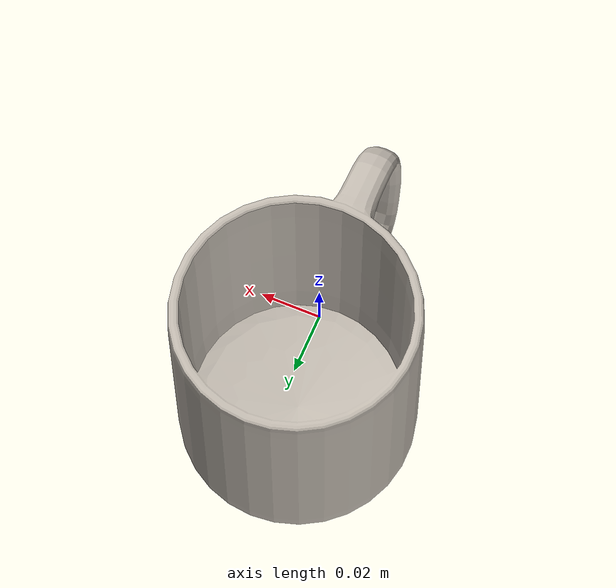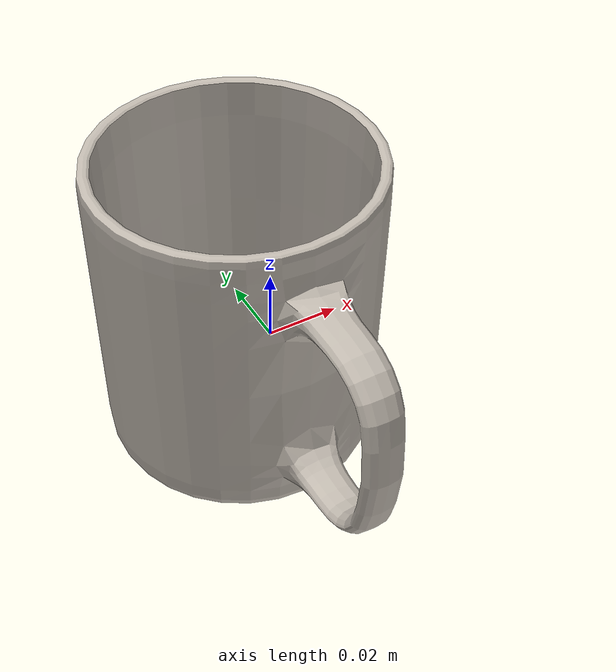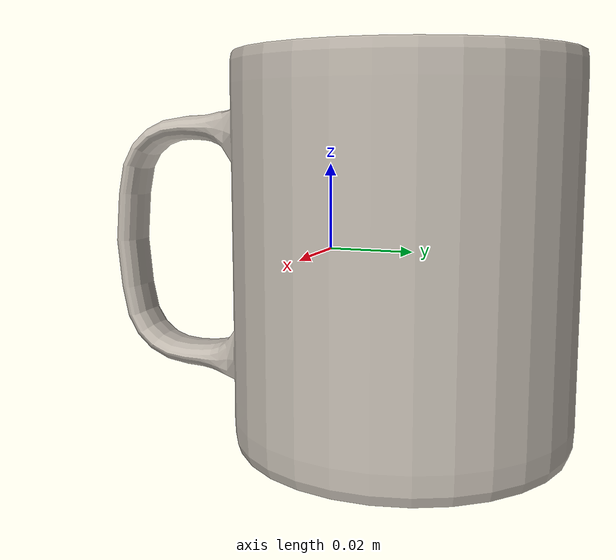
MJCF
<mujoco model="mug_14">
  <asset>
    <mesh file="visual/model_normalized_0.obj" name="model_normalized_0_vis" scale="0.115 0.115 0.115" refquat="-0.7071067811865477 0.0 0.0 0.7071067811865474"/>
    <mesh file="collision/model_normalized_collision_22.obj" name="model_normalized_collision_22._coll" scale="0.115 0.115 0.115" refquat="-0.7071067811865477 0.0 0.0 0.7071067811865474"/>
    <mesh file="collision/model_normalized_collision_23.obj" name="model_normalized_collision_23._coll" scale="0.115 0.115 0.115" refquat="-0.7071067811865477 0.0 0.0 0.7071067811865474"/>
    <mesh file="collision/model_normalized_collision_21.obj" name="model_normalized_collision_21._coll" scale="0.115 0.115 0.115" refquat="-0.7071067811865477 0.0 0.0 0.7071067811865474"/>
    <mesh file="collision/model_normalized_collision_20.obj" name="model_normalized_collision_20._coll" scale="0.115 0.115 0.115" refquat="-0.7071067811865477 0.0 0.0 0.7071067811865474"/>
    <mesh file="collision/model_normalized_collision_24.obj" name="model_normalized_collision_24._coll" scale="0.115 0.115 0.115" refquat="-0.7071067811865477 0.0 0.0 0.7071067811865474"/>
    <mesh file="collision/model_normalized_collision_30.obj" name="model_normalized_collision_30._coll" scale="0.115 0.115 0.115" refquat="-0.7071067811865477 0.0 0.0 0.7071067811865474"/>
    <mesh file="collision/model_normalized_collision_18.obj" name="model_normalized_collision_18._coll" scale="0.115 0.115 0.115" refquat="-0.7071067811865477 0.0 0.0 0.7071067811865474"/>
    <mesh file="collision/model_normalized_collision_19.obj" name="model_normalized_collision_19._coll" scale="0.115 0.115 0.115" refquat="-0.7071067811865477 0.0 0.0 0.7071067811865474"/>
    <mesh file="collision/model_normalized_collision_31.obj" name="model_normalized_collision_31._coll" scale="0.115 0.115 0.115" refquat="-0.7071067811865477 0.0 0.0 0.7071067811865474"/>
    <mesh file="collision/model_normalized_collision_25.obj" name="model_normalized_collision_25._coll" scale="0.115 0.115 0.115" refquat="-0.7071067811865477 0.0 0.0 0.7071067811865474"/>
    <mesh file="collision/model_normalized_collision_27.obj" name="model_normalized_collision_27._coll" scale="0.115 0.115 0.115" refquat="-0.7071067811865477 0.0 0.0 0.7071067811865474"/>
    <mesh file="collision/model_normalized_collision_26.obj" name="model_normalized_collision_26._coll" scale="0.115 0.115 0.115" refquat="-0.7071067811865477 0.0 0.0 0.7071067811865474"/>
    <mesh file="collision/model_normalized_collision_9.obj" name="model_normalized_collision_9._coll" scale="0.115 0.115 0.115" refquat="-0.7071067811865477 0.0 0.0 0.7071067811865474"/>
    <mesh file="collision/model_normalized_collision_8.obj" name="model_normalized_collision_8._coll" scale="0.115 0.115 0.115" refquat="-0.7071067811865477 0.0 0.0 0.7071067811865474"/>
    <mesh file="collision/model_normalized_collision_6.obj" name="model_normalized_collision_6._coll" scale="0.115 0.115 0.115" refquat="-0.7071067811865477 0.0 0.0 0.7071067811865474"/>
    <mesh file="collision/model_normalized_collision_7.obj" name="model_normalized_collision_7._coll" scale="0.115 0.115 0.115" refquat="-0.7071067811865477 0.0 0.0 0.7071067811865474"/>
    <mesh file="collision/model_normalized_collision_5.obj" name="model_normalized_collision_5._coll" scale="0.115 0.115 0.115" refquat="-0.7071067811865477 0.0 0.0 0.7071067811865474"/>
    <mesh file="collision/model_normalized_collision_4.obj" name="model_normalized_collision_4._coll" scale="0.115 0.115 0.115" refquat="-0.7071067811865477 0.0 0.0 0.7071067811865474"/>
    <mesh file="collision/model_normalized_collision_0.obj" name="model_normalized_collision_0._coll" scale="0.115 0.115 0.115" refquat="-0.7071067811865477 0.0 0.0 0.7071067811865474"/>
    <mesh file="collision/model_normalized_collision_1.obj" name="model_normalized_collision_1._coll" scale="0.115 0.115 0.115" refquat="-0.7071067811865477 0.0 0.0 0.7071067811865474"/>
    <mesh file="collision/model_normalized_collision_3.obj" name="model_normalized_collision_3._coll" scale="0.115 0.115 0.115" refquat="-0.7071067811865477 0.0 0.0 0.7071067811865474"/>
    <mesh file="collision/model_normalized_collision_2.obj" name="model_normalized_collision_2._coll" scale="0.115 0.115 0.115" refquat="-0.7071067811865477 0.0 0.0 0.7071067811865474"/>
    <mesh file="collision/model_normalized_collision_17.obj" name="model_normalized_collision_17._coll" scale="0.115 0.115 0.115" refquat="-0.7071067811865477 0.0 0.0 0.7071067811865474"/>
    <mesh file="collision/model_normalized_collision_16.obj" name="model_normalized_collision_16._coll" scale="0.115 0.115 0.115" refquat="-0.7071067811865477 0.0 0.0 0.7071067811865474"/>
    <mesh file="collision/model_normalized_collision_28.obj" name="model_normalized_collision_28._coll" scale="0.115 0.115 0.115" refquat="-0.7071067811865477 0.0 0.0 0.7071067811865474"/>
    <mesh file="collision/model_normalized_collision_14.obj" name="model_normalized_collision_14._coll" scale="0.115 0.115 0.115" refquat="-0.7071067811865477 0.0 0.0 0.7071067811865474"/>
    <mesh file="collision/model_normalized_collision_15.obj" name="model_normalized_collision_15._coll" scale="0.115 0.115 0.115" refquat="-0.7071067811865477 0.0 0.0 0.7071067811865474"/>
    <mesh file="collision/model_normalized_collision_29.obj" name="model_normalized_collision_29._coll" scale="0.115 0.115 0.115" refquat="-0.7071067811865477 0.0 0.0 0.7071067811865474"/>
    <mesh file="collision/model_normalized_collision_11.obj" name="model_normalized_collision_11._coll" scale="0.115 0.115 0.115" refquat="-0.7071067811865477 0.0 0.0 0.7071067811865474"/>
    <mesh file="collision/model_normalized_collision_10.obj" name="model_normalized_collision_10._coll" scale="0.115 0.115 0.115" refquat="-0.7071067811865477 0.0 0.0 0.7071067811865474"/>
    <mesh file="collision/model_normalized_collision_12.obj" name="model_normalized_collision_12._coll" scale="0.115 0.115 0.115" refquat="-0.7071067811865477 0.0 0.0 0.7071067811865474"/>
    <mesh file="collision/model_normalized_collision_13.obj" name="model_normalized_collision_13._coll" scale="0.115 0.115 0.115" refquat="-0.7071067811865477 0.0 0.0 0.7071067811865474"/>
    <texture type="2d" name="image0" file="visual/image0.png"/>
    <material name="canecaTex" texture="image0" specular="0.5" shininess="0.321677441"/>
  </asset>
  <worldbody>
    <body>
      <body name="object">
        <geom solimp="0.998 0.998 0.001" solref="0.001 1" density="100" friction="0.95 0.3 0.1" type="mesh" mesh="model_normalized_0_vis" conaffinity="0" contype="0" group="1" material="canecaTex"/>
        <geom solimp="0.998 0.998 0.001" solref="0.001 1" density="100" friction="0.95 0.3 0.1" type="mesh" mesh="model_normalized_collision_22._coll" group="0" rgba="0.8 0.8 0.8 0.0"/>
        <geom solimp="0.998 0.998 0.001" solref="0.001 1" density="100" friction="0.95 0.3 0.1" type="mesh" mesh="model_normalized_collision_23._coll" group="0" rgba="0.8 0.8 0.8 0.0"/>
        <geom solimp="0.998 0.998 0.001" solref="0.001 1" density="100" friction="0.95 0.3 0.1" type="mesh" mesh="model_normalized_collision_21._coll" group="0" rgba="0.8 0.8 0.8 0.0"/>
        <geom solimp="0.998 0.998 0.001" solref="0.001 1" density="100" friction="0.95 0.3 0.1" type="mesh" mesh="model_normalized_collision_20._coll" group="0" rgba="0.8 0.8 0.8 0.0"/>
        <geom solimp="0.998 0.998 0.001" solref="0.001 1" density="100" friction="0.95 0.3 0.1" type="mesh" mesh="model_normalized_collision_24._coll" group="0" rgba="0.8 0.8 0.8 0.0"/>
        <geom solimp="0.998 0.998 0.001" solref="0.001 1" density="100" friction="0.95 0.3 0.1" type="mesh" mesh="model_normalized_collision_30._coll" group="0" rgba="0.8 0.8 0.8 0.0"/>
        <geom solimp="0.998 0.998 0.001" solref="0.001 1" density="100" friction="0.95 0.3 0.1" type="mesh" mesh="model_normalized_collision_18._coll" group="0" rgba="0.8 0.8 0.8 0.0"/>
        <geom solimp="0.998 0.998 0.001" solref="0.001 1" density="100" friction="0.95 0.3 0.1" type="mesh" mesh="model_normalized_collision_19._coll" group="0" rgba="0.8 0.8 0.8 0.0"/>
        <geom solimp="0.998 0.998 0.001" solref="0.001 1" density="100" friction="0.95 0.3 0.1" type="mesh" mesh="model_normalized_collision_31._coll" group="0" rgba="0.8 0.8 0.8 0.0"/>
        <geom solimp="0.998 0.998 0.001" solref="0.001 1" density="100" friction="0.95 0.3 0.1" type="mesh" mesh="model_normalized_collision_25._coll" group="0" rgba="0.8 0.8 0.8 0.0"/>
        <geom solimp="0.998 0.998 0.001" solref="0.001 1" density="100" friction="0.95 0.3 0.1" type="mesh" mesh="model_normalized_collision_27._coll" group="0" rgba="0.8 0.8 0.8 0.0"/>
        <geom solimp="0.998 0.998 0.001" solref="0.001 1" density="100" friction="0.95 0.3 0.1" type="mesh" mesh="model_normalized_collision_26._coll" group="0" rgba="0.8 0.8 0.8 0.0"/>
        <geom solimp="0.998 0.998 0.001" solref="0.001 1" density="100" friction="0.95 0.3 0.1" type="mesh" mesh="model_normalized_collision_9._coll" group="0" rgba="0.8 0.8 0.8 0.0"/>
        <geom solimp="0.998 0.998 0.001" solref="0.001 1" density="100" friction="0.95 0.3 0.1" type="mesh" mesh="model_normalized_collision_8._coll" group="0" rgba="0.8 0.8 0.8 0.0"/>
        <geom solimp="0.998 0.998 0.001" solref="0.001 1" density="100" friction="0.95 0.3 0.1" type="mesh" mesh="model_normalized_collision_6._coll" group="0" rgba="0.8 0.8 0.8 0.0"/>
        <geom solimp="0.998 0.998 0.001" solref="0.001 1" density="100" friction="0.95 0.3 0.1" type="mesh" mesh="model_normalized_collision_7._coll" group="0" rgba="0.8 0.8 0.8 0.0"/>
        <geom solimp="0.998 0.998 0.001" solref="0.001 1" density="100" friction="0.95 0.3 0.1" type="mesh" mesh="model_normalized_collision_5._coll" group="0" rgba="0.8 0.8 0.8 0.0"/>
        <geom solimp="0.998 0.998 0.001" solref="0.001 1" density="100" friction="0.95 0.3 0.1" type="mesh" mesh="model_normalized_collision_4._coll" group="0" rgba="0.8 0.8 0.8 0.0"/>
        <geom solimp="0.998 0.998 0.001" solref="0.001 1" density="100" friction="0.95 0.3 0.1" type="mesh" mesh="model_normalized_collision_0._coll" group="0" rgba="0.8 0.8 0.8 0.0"/>
        <geom solimp="0.998 0.998 0.001" solref="0.001 1" density="100" friction="0.95 0.3 0.1" type="mesh" mesh="model_normalized_collision_1._coll" group="0" rgba="0.8 0.8 0.8 0.0"/>
        <geom solimp="0.998 0.998 0.001" solref="0.001 1" density="100" friction="0.95 0.3 0.1" type="mesh" mesh="model_normalized_collision_3._coll" group="0" rgba="0.8 0.8 0.8 0.0"/>
        <geom solimp="0.998 0.998 0.001" solref="0.001 1" density="100" friction="0.95 0.3 0.1" type="mesh" mesh="model_normalized_collision_2._coll" group="0" rgba="0.8 0.8 0.8 0.0"/>
        <geom solimp="0.998 0.998 0.001" solref="0.001 1" density="100" friction="0.95 0.3 0.1" type="mesh" mesh="model_normalized_collision_17._coll" group="0" rgba="0.8 0.8 0.8 0.0"/>
        <geom solimp="0.998 0.998 0.001" solref="0.001 1" density="100" friction="0.95 0.3 0.1" type="mesh" mesh="model_normalized_collision_16._coll" group="0" rgba="0.8 0.8 0.8 0.0"/>
        <geom solimp="0.998 0.998 0.001" solref="0.001 1" density="100" friction="0.95 0.3 0.1" type="mesh" mesh="model_normalized_collision_28._coll" group="0" rgba="0.8 0.8 0.8 0.0"/>
        <geom solimp="0.998 0.998 0.001" solref="0.001 1" density="100" friction="0.95 0.3 0.1" type="mesh" mesh="model_normalized_collision_14._coll" group="0" rgba="0.8 0.8 0.8 0.0"/>
        <geom solimp="0.998 0.998 0.001" solref="0.001 1" density="100" friction="0.95 0.3 0.1" type="mesh" mesh="model_normalized_collision_15._coll" group="0" rgba="0.8 0.8 0.8 0.0"/>
        <geom solimp="0.998 0.998 0.001" solref="0.001 1" density="100" friction="0.95 0.3 0.1" type="mesh" mesh="model_normalized_collision_29._coll" group="0" rgba="0.8 0.8 0.8 0.0"/>
        <geom solimp="0.998 0.998 0.001" solref="0.001 1" density="100" friction="0.95 0.3 0.1" type="mesh" mesh="model_normalized_collision_11._coll" group="0" rgba="0.8 0.8 0.8 0.0"/>
        <geom solimp="0.998 0.998 0.001" solref="0.001 1" density="100" friction="0.95 0.3 0.1" type="mesh" mesh="model_normalized_collision_10._coll" group="0" rgba="0.8 0.8 0.8 0.0"/>
        <geom solimp="0.998 0.998 0.001" solref="0.001 1" density="100" friction="0.95 0.3 0.1" type="mesh" mesh="model_normalized_collision_12._coll" group="0" rgba="0.8 0.8 0.8 0.0"/>
        <geom solimp="0.998 0.998 0.001" solref="0.001 1" density="100" friction="0.95 0.3 0.1" type="mesh" mesh="model_normalized_collision_13._coll" group="0" rgba="0.8 0.8 0.8 0.0"/>
      </body>
      <site rgba="0 0 0 0" size="0.005" pos="0.0 0.0001344689249999985 -0.045172274850000006" name="bottom_site"/>
      <site rgba="0 0 0 0" size="0.005" pos="0.0 0.0001344689249999985 0.0451647504" name="top_site"/>
      <site rgba="0 0 0 0" size="0.005" pos="0.0392806811 0.056769187650000004 -3.7622249999987034e-06" name="horizontal_radius_site"/>
    </body>
  </worldbody>
</mujoco>
